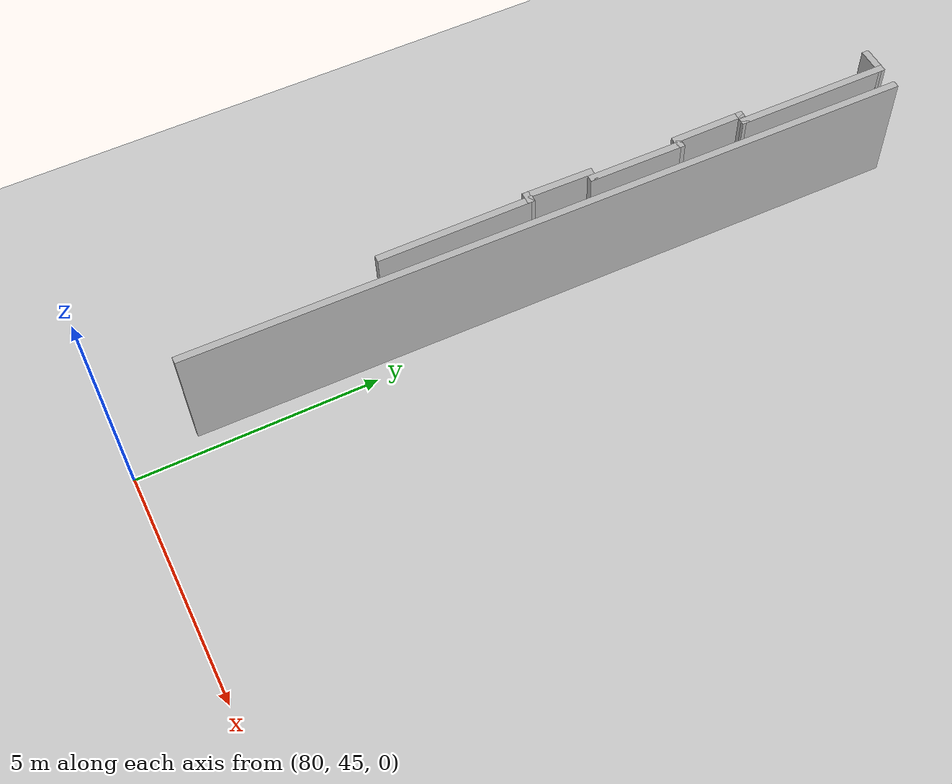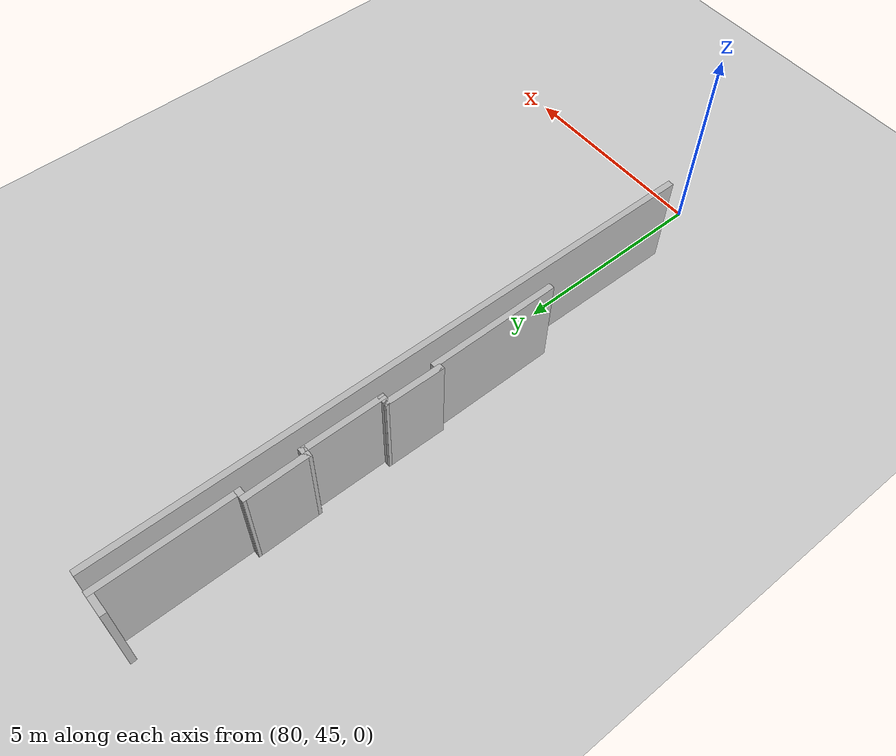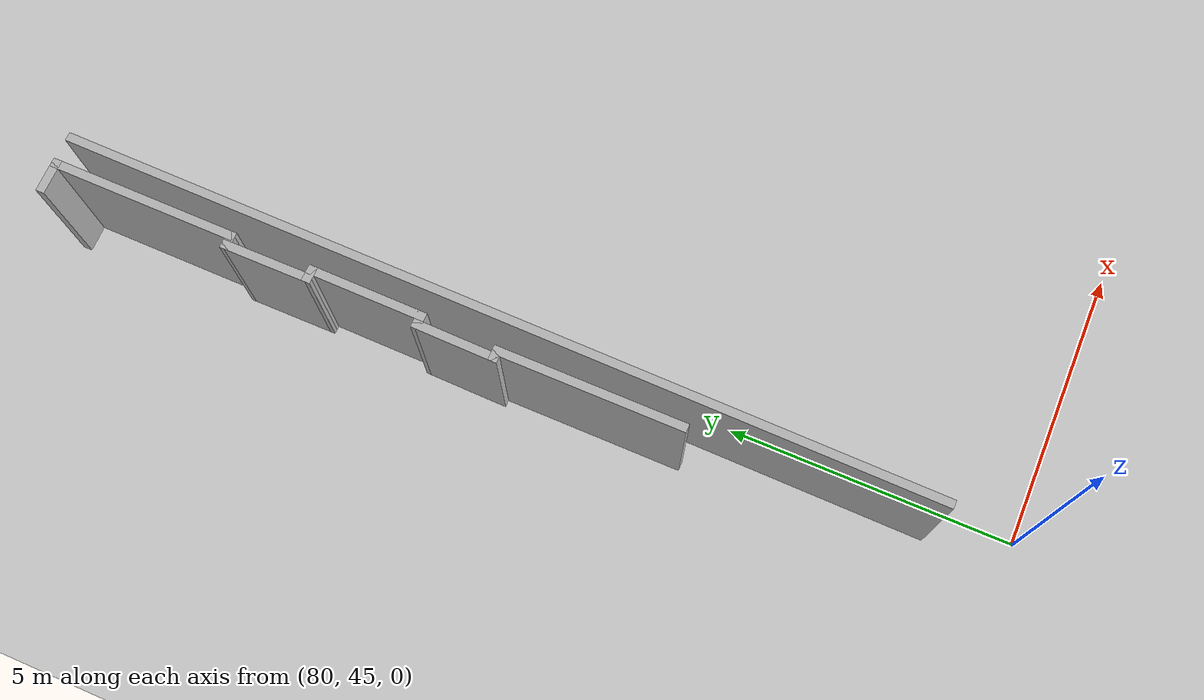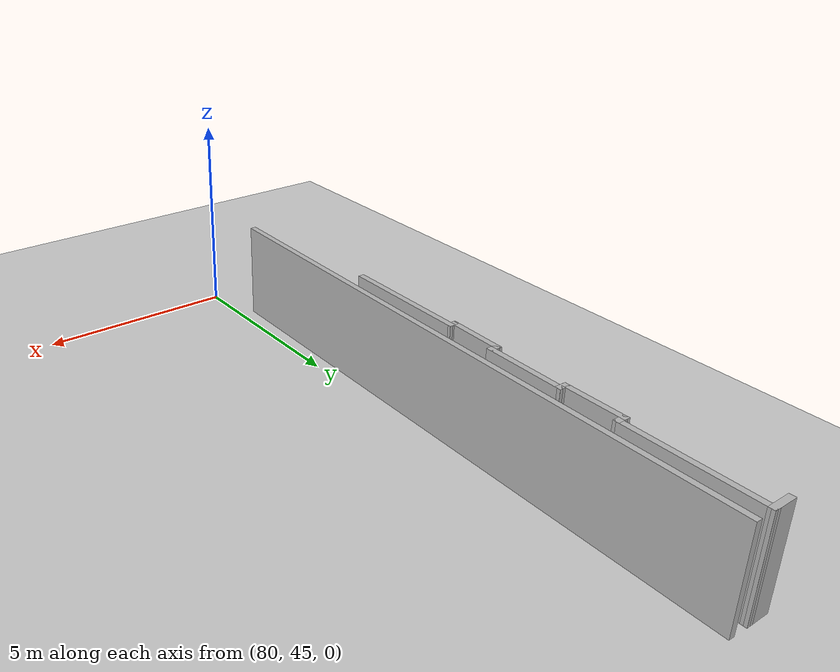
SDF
<sdf version="1.6">
 <world name="default">
  <model name="ground_plane">
   <static>1</static>
   <link name="link">
    <collision name="collision">
     <geometry><plane><normal>0 0 1</normal><size>200 100</size></plane></geometry>
     <surface><friction><ode><mu>100</mu><mu2>50</mu2></ode></friction></surface>
    </collision>
    <visual name="visual">
     <cast_shadows>0</cast_shadows>
     <geometry><plane><normal>0 0 1</normal><size>200 100</size></plane></geometry>
     <material>
      <script><uri>file://media/materials/scripts/gazebo.material</uri><name>Gazebo/Grey</name></script>
     </material>
    </visual>
   </link>
  </model>
  <model name="vgke_production">
   <link name="Wall_183">
    <pose>-18.9532 6.63242 0 0 -0 1.55991</pose>
    <visual name="Wall_183_Visual">
     <pose>0 0 1.25 0 -0 0</pose>
     <geometry><box><size>15.2999 0.15 2.5</size></box></geometry>
    </visual>
    <collision name="Wall_183_Collision">
     <pose>0 0 1.25 0 -0 0</pose>
     <geometry><box><size>15.2999 0.15 2.5</size></box></geometry>
    </collision>
    <inertial>
     <inertia><ixx>1</ixx><ixy>0</ixy><ixz>0</ixz><iyy>1</iyy><iyz>0</iyz><izz>1</izz></inertia>
     <mass>1</mass>
    </inertial>
   </link>
   <link name="Wall_205">
    <pose>-19.498 4.77876 0 0 -0 1.56888</pose>
    <visual name="Wall_205_Visual">
     <pose>0 0 1.25 0 -0 0</pose>
     <geometry><box><size>3.27901 0.15 2.5</size></box></geometry>
    </visual>
    <collision name="Wall_205_Collision">
     <pose>0 0 1.25 0 -0 0</pose>
     <geometry><box><size>3.27901 0.15 2.5</size></box></geometry>
    </collision>
    <inertial>
     <inertia><ixx>1</ixx><ixy>0</ixy><ixz>0</ixz><iyy>1</iyy><iyz>0</iyz><izz>1</izz></inertia>
     <mass>1</mass>
    </inertial>
   </link>
   <link name="Wall_207">
    <pose>-19.552 6.34405 0 0 -0 3.12773</pose>
    <visual name="Wall_207_Visual">
     <pose>0 0 1.25 0 -0 0</pose>
     <geometry><box><size>0.264091 0.15 2.5</size></box></geometry>
    </visual>
    <collision name="Wall_207_Collision">
     <pose>0 0 1.25 0 -0 0</pose>
     <geometry><box><size>0.264091 0.15 2.5</size></box></geometry>
    </collision>
    <inertial>
     <inertia><ixx>1</ixx><ixy>0</ixy><ixz>0</ixz><iyy>1</iyy><iyz>0</iyz><izz>1</izz></inertia>
     <mass>1</mass>
    </inertial>
   </link>
   <link name="Wall_219">
    <pose>-19.6011 7.00947 0 0 0 -1.58826</pose>
    <visual name="Wall_219_Visual">
     <pose>0 0 1.25 0 -0 0</pose>
     <geometry><box><size>1.48559 0.15 2.5</size></box></geometry>
    </visual>
    <collision name="Wall_219_Collision">
     <pose>0 0 1.25 0 -0 0</pose>
     <geometry><box><size>1.48559 0.15 2.5</size></box></geometry>
    </collision>
    <inertial>
     <inertia><ixx>1</ixx><ixy>0</ixy><ixz>0</ixz><iyy>1</iyy><iyz>0</iyz><izz>1</izz></inertia>
     <mass>1</mass>
    </inertial>
   </link>
   <link name="Wall_221">
    <pose>-19.5224 7.67716 0 0 -0 0</pose>
    <visual name="Wall_221_Visual">
     <pose>0 0 1.25 0 -0 0</pose>
     <geometry><box><size>0.284122 0.15 2.5</size></box></geometry>
    </visual>
    <collision name="Wall_221_Collision">
     <pose>0 0 1.25 0 -0 0</pose>
     <geometry><box><size>0.284122 0.15 2.5</size></box></geometry>
    </collision>
    <inertial>
     <inertia><ixx>1</ixx><ixy>0</ixy><ixz>0</ixz><iyy>1</iyy><iyz>0</iyz><izz>1</izz></inertia>
     <mass>1</mass>
    </inertial>
   </link>
   <link name="Wall_225">
    <pose>-19.4274 8.63174 0 0 0 -1.58129</pose>
    <visual name="Wall_225_Visual">
     <pose>0 0 1.25 0 -0 0</pose>
     <geometry><box><size>2.06805 0.15 2.5</size></box></geometry>
    </visual>
    <collision name="Wall_225_Collision">
     <pose>0 0 1.25 0 -0 0</pose>
     <geometry><box><size>2.06805 0.15 2.5</size></box></geometry>
    </collision>
    <inertial>
     <inertia><ixx>1</ixx><ixy>0</ixy><ixz>0</ixz><iyy>1</iyy><iyz>0</iyz><izz>1</izz></inertia>
     <mass>1</mass>
    </inertial>
   </link>
   <link name="Wall_227">
    <pose>-19.4886 9.59263 0 0 -0 3.11459</pose>
    <visual name="Wall_227_Visual">
     <pose>0 0 1.25 0 -0 0</pose>
     <geometry><box><size>0.293069 0.15 2.5</size></box></geometry>
    </visual>
    <collision name="Wall_227_Collision">
     <pose>0 0 1.25 0 -0 0</pose>
     <geometry><box><size>0.293069 0.15 2.5</size></box></geometry>
    </collision>
    <inertial>
     <inertia><ixx>1</ixx><ixy>0</ixy><ixz>0</ixz><iyy>1</iyy><iyz>0</iyz><izz>1</izz></inertia>
     <mass>1</mass>
    </inertial>
   </link>
   <link name="Wall_228">
    <pose>-19.5598 10.3174 0 0 -0 1.5708</pose>
    <visual name="Wall_228_Visual">
     <pose>0 0 1.25 0 -0 0</pose>
     <geometry><box><size>1.59573 0.15 2.5</size></box></geometry>
    </visual>
    <collision name="Wall_228_Collision">
     <pose>0 0 1.25 0 -0 0</pose>
     <geometry><box><size>1.59573 0.15 2.5</size></box></geometry>
    </collision>
    <inertial>
     <inertia><ixx>1</ixx><ixy>0</ixy><ixz>0</ixz><iyy>1</iyy><iyz>0</iyz><izz>1</izz></inertia>
     <mass>1</mass>
    </inertial>
   </link>
   <link name="Wall_230">
    <pose>-19.4746 11.0409 0 0 -0 0.008549</pose>
    <visual name="Wall_230_Visual">
     <pose>0 0 1.25 0 -0 0</pose>
     <geometry><box><size>0.320412 0.15 2.5</size></box></geometry>
    </visual>
    <collision name="Wall_230_Collision">
     <pose>0 0 1.25 0 -0 0</pose>
     <geometry><box><size>0.320412 0.15 2.5</size></box></geometry>
    </collision>
    <inertial>
     <inertia><ixx>1</ixx><ixy>0</ixy><ixz>0</ixz><iyy>1</iyy><iyz>0</iyz><izz>1</izz></inertia>
     <mass>1</mass>
    </inertial>
   </link>
   <link name="Wall_232">
    <pose>-19.379 12.631 0 0 0 -1.57735</pose>
    <visual name="Wall_232_Visual">
     <pose>0 0 1.25 0 -0 0</pose>
     <geometry><box><size>3.32878 0.15 2.5</size></box></geometry>
    </visual>
    <collision name="Wall_232_Collision">
     <pose>0 0 1.25 0 -0 0</pose>
     <geometry><box><size>3.32878 0.15 2.5</size></box></geometry>
    </collision>
    <inertial>
     <inertia><ixx>1</ixx><ixy>0</ixy><ixz>0</ixz><iyy>1</iyy><iyz>0</iyz><izz>1</izz></inertia>
     <mass>1</mass>
    </inertial>
   </link>
   <link name="Wall_234">
    <pose>-19.6003 14.2187 0 0 0 -3.13456</pose>
    <visual name="Wall_234_Visual">
     <pose>0 0 1.25 0 -0 0</pose>
     <geometry><box><size>0.613335 0.15 2.5</size></box></geometry>
    </visual>
    <collision name="Wall_234_Collision">
     <pose>0 0 1.25 0 -0 0</pose>
     <geometry><box><size>0.613335 0.15 2.5</size></box></geometry>
    </collision>
    <inertial>
     <inertia><ixx>1</ixx><ixy>0</ixy><ixz>0</ixz><iyy>1</iyy><iyz>0</iyz><izz>1</izz></inertia>
     <mass>1</mass>
    </inertial>
   </link>
   <pose>98.6 47.426 0.01 0 0 0</pose>
  </model>
 </world>
</sdf>
